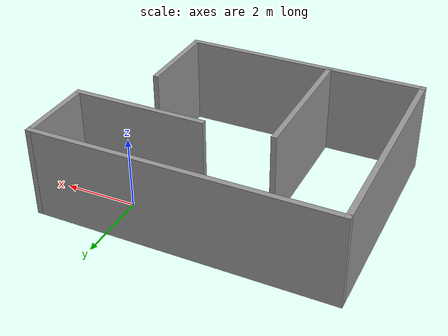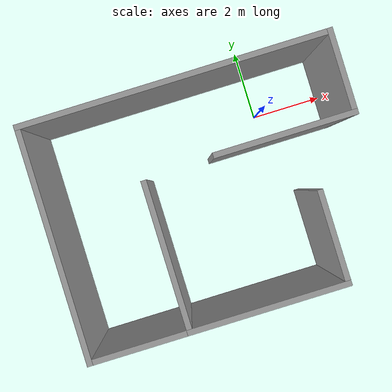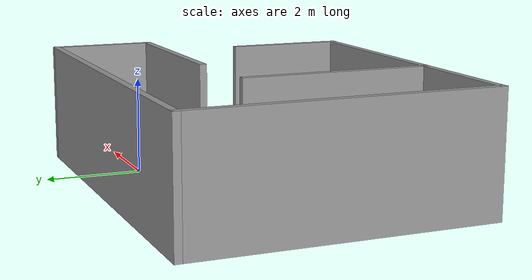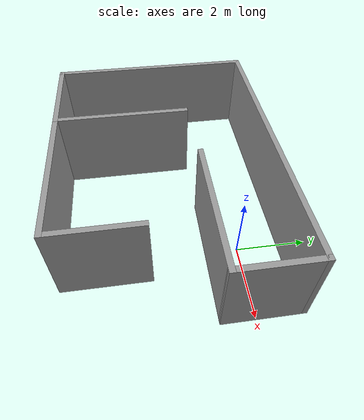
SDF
<?xml version='1.0'?>
<sdf version='1.6'>
  <model name='home'>
    <pose frame=''>-2.07124 -1.8047 0 0 -0 0</pose>
    <link name='Wall_10'>
      <collision name='Wall_10_Collision'>
        <geometry>
          <box>
            <size>4.25 0.15 2.5</size>
          </box>
        </geometry>
        <pose frame=''>0 0 1.25 0 -0 0</pose>
      </collision>
      <visual name='Wall_10_Visual'>
        <pose frame=''>0 0 1.25 0 -0 0</pose>
        <geometry>
          <box>
            <size>4.25 0.15 2.5</size>
          </box>
        </geometry>
        <material>
          <script>
            <uri>file://media/materials/scripts/gazebo.material</uri>
            <name>Gazebo/Grey</name>
          </script>
          <ambient>1 1 1 1</ambient>
        </material>
        <meta>
          <layer>0</layer>
        </meta>
      </visual>
      <pose frame=''>0.6 -3.05 0 0 -0 0</pose>
    </link>
    <link name='Wall_11'>
      <collision name='Wall_11_Collision'>
        <geometry>
          <box>
            <size>2.5 0.15 2.5</size>
          </box>
        </geometry>
        <pose frame=''>0 0 1.25 0 -0 0</pose>
      </collision>
      <visual name='Wall_11_Visual'>
        <pose frame=''>0 0 1.25 0 -0 0</pose>
        <geometry>
          <box>
            <size>2.5 0.15 2.5</size>
          </box>
        </geometry>
        <material>
          <script>
            <uri>file://media/materials/scripts/gazebo.material</uri>
            <name>Gazebo/Grey</name>
          </script>
          <ambient>1 1 1 1</ambient>
        </material>
        <meta>
          <layer>0</layer>
        </meta>
      </visual>
      <pose frame=''>2.65 -1.875 0 0 -0 1.5708</pose>
    </link>
    <link name='Wall_3'>
      <collision name='Wall_3_Collision'>
        <geometry>
          <box>
            <size>3.75 0.15 2.5</size>
          </box>
        </geometry>
        <pose frame=''>0 0 1.25 0 -0 0</pose>
      </collision>
      <visual name='Wall_3_Visual'>
        <pose frame=''>0 0 1.25 0 -0 0</pose>
        <geometry>
          <box>
            <size>3.75 0.15 2.5</size>
          </box>
        </geometry>
        <material>
          <script>
            <uri>file://media/materials/scripts/gazebo.material</uri>
            <name>Gazebo/Grey</name>
          </script>
          <ambient>1 1 1 1</ambient>
        </material>
        <meta>
          <layer>0</layer>
        </meta>
      </visual>
      <pose frame=''>2.25 0.95 0 0 -0 0</pose>
    </link>
    <link name='Wall_4'>
      <collision name='Wall_4_Collision'>
        <geometry>
          <box>
            <size>2.25 0.15 2.5</size>
          </box>
        </geometry>
        <pose frame=''>0 0 1.25 0 -0 0</pose>
      </collision>
      <visual name='Wall_4_Visual'>
        <pose frame=''>0 0 1.25 0 -0 0</pose>
        <geometry>
          <box>
            <size>2.25 0.15 2.5</size>
          </box>
        </geometry>
        <material>
          <script>
            <uri>file://media/materials/scripts/gazebo.material</uri>
            <name>Gazebo/Grey</name>
          </script>
          <ambient>1 1 1 1</ambient>
        </material>
        <meta>
          <layer>0</layer>
        </meta>
      </visual>
      <pose frame=''>4.05 2 0 0 -0 1.5708</pose>
    </link>
    <link name='Wall_5'>
      <collision name='Wall_5_Collision'>
        <geometry>
          <box>
            <size>8.25 0.15 2.5</size>
          </box>
        </geometry>
        <pose frame=''>0 0 1.25 0 -0 0</pose>
      </collision>
      <visual name='Wall_5_Visual'>
        <pose frame=''>0 0 1.25 0 -0 0</pose>
        <geometry>
          <box>
            <size>8.25 0.15 2.5</size>
          </box>
        </geometry>
        <material>
          <script>
            <uri>file://media/materials/scripts/gazebo.material</uri>
            <name>Gazebo/Grey</name>
          </script>
          <ambient>1 1 1 1</ambient>
        </material>
        <meta>
          <layer>0</layer>
        </meta>
      </visual>
      <pose frame=''>-0 3.05 0 0 -0 3.14159</pose>
    </link>
    <link name='Wall_6'>
      <collision name='Wall_6_Collision'>
        <geometry>
          <box>
            <size>6.25 0.15 2.5</size>
          </box>
        </geometry>
        <pose frame=''>0 0 1.25 0 -0 0</pose>
      </collision>
      <visual name='Wall_6_Visual'>
        <pose frame=''>0 0 1.25 0 -0 0</pose>
        <geometry>
          <box>
            <size>6.25 0.15 2.5</size>
          </box>
        </geometry>
        <material>
          <script>
            <uri>file://media/materials/scripts/gazebo.material</uri>
            <name>Gazebo/Grey</name>
          </script>
          <ambient>1 1 1 1</ambient>
        </material>
        <meta>
          <layer>0</layer>
        </meta>
      </visual>
      <pose frame=''>-4.05 -0 0 0 -0 -1.5708</pose>
    </link>
    <link name='Wall_7'>
      <collision name='Wall_7_Collision'>
        <geometry>
          <box>
            <size>2.75 0.15 2.5</size>
          </box>
        </geometry>
        <pose frame=''>0 0 1.25 0 -0 0</pose>
      </collision>
      <visual name='Wall_7_Visual'>
        <pose frame=''>0 0 1.25 0 -0 0</pose>
        <geometry>
          <box>
            <size>2.75 0.15 2.5</size>
          </box>
        </geometry>
        <material>
          <script>
            <uri>file://media/materials/scripts/gazebo.material</uri>
            <name>Gazebo/Grey</name>
          </script>
          <ambient>1 1 1 1</ambient>
        </material>
        <meta>
          <layer>0</layer>
        </meta>
      </visual>
      <pose frame=''>-2.75 -3.05 0 0 -0 0</pose>
    </link>
    <link name='Wall_8'>
      <collision name='Wall_8_Collision'>
        <geometry>
          <box>
            <size>4 0.15 2.5</size>
          </box>
        </geometry>
        <pose frame=''>0 0 1.25 0 -0 0</pose>
      </collision>
      <visual name='Wall_8_Visual'>
        <pose frame=''>0 0 1.25 0 -0 0</pose>
        <geometry>
          <box>
            <size>4 0.15 2.5</size>
          </box>
        </geometry>
        <material>
          <script>
            <uri>file://media/materials/scripts/gazebo.material</uri>
            <name>Gazebo/Grey</name>
          </script>
          <ambient>1 1 1 1</ambient>
        </material>
        <meta>
          <layer>0</layer>
        </meta>
      </visual>
      <pose frame=''>-1.45 -1.125 0 0 -0 1.5708</pose>
    </link>
    <static>1</static>
  </model>
</sdf>
